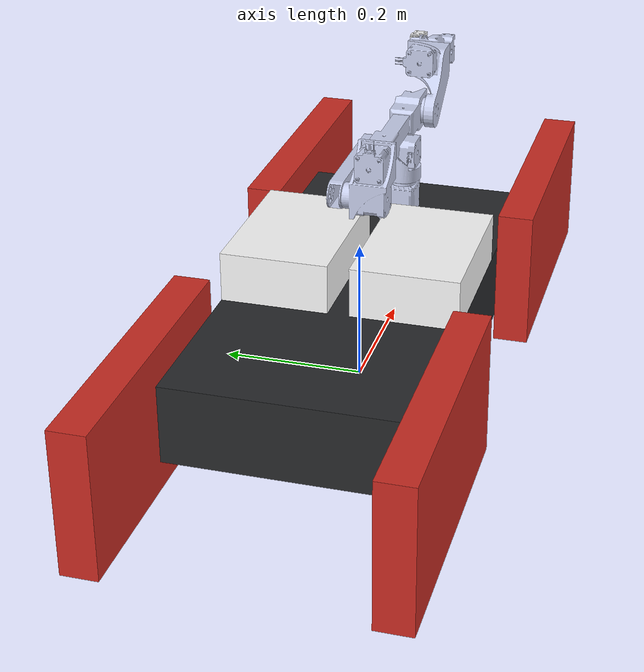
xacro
<?xml version="1.0"?>
<robot xmlns:xacro="http://www.ros.org/wiki/xacro" name="Lotti2">
    <xacro:arg name="initial_positions_file" default="initial_positions.yaml" />

    <!-- Import Lotti2 urdf file -->
    <xacro:include filename="$(find lotti2_control)/description/urdf/Lotti.urdf.xacro" />

    <!-- Import control_xacro -->
    <xacro:include filename="Lotti2.ros2_control.xacro" />

    <xacro:Lotti2_ros2_control name="FakeSystem" initial_positions_file="$(arg initial_positions_file)"/>

</robot>

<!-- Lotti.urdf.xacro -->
<robot xmlns:xacro="http://www.ros.org/wiki/xacro" name="Lotti2">

<!-- included files for properties -->
    <xacro:include filename="urdf_inertial_shapes.xacro" />
    <xacro:include filename="urdf_materials.xacro"/>

<!-- include files for parts -->
    <xacro:include filename="Lotti_arm.xacro"/>
    <xacro:include filename="Lotti_body.xacro"/>

<!-- include controllers -->
    <xacro:include filename="$(find lotti2_control)/ros2_control/Lotti2.ros2_control.xacro"/>
</robot>

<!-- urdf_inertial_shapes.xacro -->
<robot xmlns:xacro="http://www.ros.org/wiki/xacro" >

    <xacro:macro name="inertial_box" params="mass x y z *origin " >
        <inertial>
            <xacro:insert_block name="origin" />
            <mass value="${mass}" />
            <inertia
                ixx="${(1/12) * mass * (y*y+z*z)}" ixy="0.0" ixz="0.0"
                iyy="${(1/12) * mass * (x*x+z*z)}" iyz="0.0"
                izz="${(1/12) * mass * (x*x+z*z)}" />
        </inertial>
    </xacro:macro>

    <xacro:macro name="inertial_cylinder" params="mass length radius *origin " >
        <inertial>
            <xacro:insert_block name="origin" />
            <mass value="${mass}" />
            <inertia
                ixx="${(1/12) * mass * (3*radius*radius + length*length)}" ixy="0.0" ixz="0.0"
                iyy="${(1/12) * mass * (3*radius*radius + length*length)}" iyz="0.0"
                izz="${(1/2) * mass * radius*radius}"/>
        </inertial>
    </xacro:macro>

</robot>

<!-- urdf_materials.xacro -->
<robot xmlns:xacro="http://www.ros.org/wiki/xacro" >

    <material name="red">
        <color rgba="${204/255} ${44/255} ${36/255} 1" />
    </material>

    <material name="black">
        <color rgba ="${39/255} ${41/255} ${43/255} 1" />
    </material>

    <material name="orange">
        <color rgba ="${255/255} ${165/255} ${0/255} 1" />
    </material>

    <material name="white">
        <color rgba ="${255/255} ${255/255} ${255/255} 1" />
    </material>

</robot>

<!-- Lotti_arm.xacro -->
<robot xmlns:xacro="http://www.ros.org/wiki/xacro" >

<!-- Main Body info -->
  <xacro:property name="body_length" value="0.7"/>
  <xacro:property name="body_width" value="0.33"/>
  <xacro:property name="body_height" value="0.15"/>
  <xacro:property name="body_mass" value="25.0"/>

  <joint name="arm_base_joint" type="fixed">
    <origin xyz="${body_length/2 - 0.1} 0 ${body_height}" rpy="0 0 0" />
    <parent link="body_link" />
    <child link="arm_base_link" />
  </joint>

  <link name="arm_base_link">
    <inertial>
      <origin
        xyz="-0.000224896614335376 -1.76636436838296E-07 0.0284165324113623"
        rpy="0 0 0" />
      <mass
        value="0.095546621133873" />
      <inertia
        ixx="2.24695844112508E-05"
        ixy="-3.731322221846E-10"
        ixz="-2.937859610971E-07"
        iyy="2.2990565108001E-05"
        iyz="-1.42938122280671E-10"
        izz="2.49171374121222E-05" />
    </inertial>
    <visual>
      <origin
        xyz="0 0 0"
        rpy="0 0 0" />
      <geometry>
        <mesh filename="package://lotti2_control/description/meshes/base_link.STL" />
      </geometry>
      <material name="">
        <color rgba="0.792156862745098 0.819607843137255 0.933333333333333 1" />
      </material>
    </visual>
    <collision>
      <origin
        xyz="0 0 0"
        rpy="0 0 0" />
      <geometry>
        <mesh filename="package://lotti2_control/description/meshes/base_link.STL" />
      </geometry>
    </collision>
  </link>

  <link name="arm1_link">
    <inertial>
      <origin
        xyz="-0.000148896967024248 0.0077665679059083 0.0349624287308134"
        rpy="0 0 0" />
      <mass
        value="0.144567896175452" />
      <inertia
        ixx="4.73128961005082E-05"
        ixy="-2.93656659450878E-07"
        ixz="3.58678174121677E-10"
        iyy="5.2656542855629E-05"
        iyz="-4.39767746616673E-06"
        izz="4.98076281467198E-05" />
    </inertial>
    <visual>
      <origin
        xyz="0 0 0"
        rpy="0 0 0" />
      <geometry>
        <mesh filename="package://lotti2_control/description/meshes/arm1_link.STL" />
      </geometry>
      <material name="">
        <color rgba="0.792156862745098 0.819607843137255 0.933333333333333 1" />
      </material>
    </visual>
    <collision>
      <origin
        xyz="0 0 0"
        rpy="0 0 0" />
      <geometry>
        <mesh filename="package://lotti2_control/description/meshes/arm1_link.STL" />
      </geometry>
    </collision>
  </link>

  <joint name="arm1_joint" type="revolute">
    <origin
      xyz="0 0 0.051"
      rpy="0 0 0" />
    <parent
      link="arm_base_link" />
    <child
      link="arm1_link" />
    <axis
      xyz="0 0 1" />
    <limit
      lower="-3.2"
      upper="3.2"
      effort="0"
      velocity="8" />
  </joint>

  <link name="arm2_link">
    <inertial>
      <origin
        xyz="-0.0900000000000001 0.00988701341491088 1.11022302462516E-16"
        rpy="0 0 0" />
      <mass
        value="0.0445936683001197" />
      <inertia
        ixx="1.15906322136137E-05"
        ixy="2.14234328856811E-20"
        ixz="-8.43790123801404E-21"
        iyy="0.000160750275623527"
        iyz="5.85999440914565E-20"
        izz="0.000154939805231047" />
    </inertial>
    <visual>
      <origin
        xyz="0 0 0"
        rpy="0 0 0" />
      <geometry>
        <mesh filename="package://lotti2_control/description/meshes/arm2_link.STL" />
      </geometry>
      <material name="">
        <color rgba="0.792156862745098 0.819607843137255 0.933333333333333 1" />
      </material>
    </visual>
    <collision>
      <origin
        xyz="0 0 0"
        rpy="0 0 0" />
      <geometry>
        <mesh filename="package://lotti2_control/description/meshes/arm2_link.STL" />
      </geometry>
    </collision>
  </link>

  <joint name="arm2_joint" type="revolute">
    <origin
      xyz="0 0.04285 0.04255"
      rpy="0 0 0" />
    <parent
      link="arm1_link" />
    <child
      link="arm2_link" />
    <axis
      xyz="0 1 0" />
    <limit
      lower="-0.1"
      upper="3.3"
      effort="0"
      velocity="8" />
  </joint>

  <link name="arm3_link">
    <inertial>
      <origin
        xyz="0.0034648183052334 -0.0383852430442727 0.0255502171970031"
        rpy="0 0 0" />
      <mass
        value="0.245453937373138" />
      <inertia
        ixx="8.97316882684736E-05"
        ixy="1.16398015613713E-06"
        ixz="-6.81869033600654E-06"
        iyy="8.9736154796116E-05"
        iyz="6.8197509364556E-06"
        izz="8.03998131737458E-05" />
    </inertial>
    <visual>
      <origin
        xyz="0 0 0"
        rpy="0 0 0" />
      <geometry>
        <mesh filename="package://lotti2_control/description/meshes/arm3_link.STL" />
      </geometry>
      <material name="">
        <color rgba="0.792156862745098 0.819607843137255 0.933333333333333 1" />
      </material>
    </visual>
    <collision>
      <origin
        xyz="0 0 0"
        rpy="0 0 0" />
      <geometry>
        <mesh filename="package://lotti2_control/description/meshes/arm3_link.STL" />
      </geometry>
    </collision>
  </link>

  <joint name="arm3_joint" type="revolute">
    <origin
      xyz="-0.18 0 0"
      rpy="0 0 0" />
    <parent
      link="arm2_link" />
    <child
      link="arm3_link" />
    <axis
      xyz="0 -1 0" />
    <limit
      lower="-0.1"
      upper="3.3"
      effort="0"
      velocity="8" />
  </joint>

  <link name="arm4_link">
    <inertial>
      <origin
        xyz="0.129288922794988 -0.00357560359269317 0.000163536166512185"
        rpy="0 0 0" />
      <mass
        value="0.172732716660201" />
      <inertia
        ixx="4.39354110528179E-05"
        ixy="3.80962349323384E-06"
        ixz="-4.51308005115847E-10"
        iyy="0.000109924099431947"
        iyz="2.02370281934001E-10"
        izz="0.000100955074081845" />
    </inertial>
    <visual>
      <origin
        xyz="0 0 0"
        rpy="0 0 0" />
      <geometry>
        <mesh filename="package://lotti2_control/description/meshes/arm4_link.STL" />
      </geometry>
      <material name="">
        <color rgba="0.792156862745098 0.819607843137255 0.933333333333333 1" />
      </material>
    </visual>
    <collision>
      <origin
        xyz="0 0 0"
        rpy="0 0 0" />
      <geometry>
        <mesh filename="package://lotti2_control/description/meshes/arm4_link.STL" />
      </geometry>
    </collision>
  </link>

  <joint name="arm4_joint" type="revolute">
    <origin
      xyz="0.04185 -0.04185 0.0511"
      rpy="0 0 0" />
    <parent
      link="arm3_link" />
    <child
      link="arm4_link" />
    <axis
      xyz="-1 0 0" />
    <limit
      lower="-3.3"
      upper="3.3"
      effort="0"
      velocity="8" />
  </joint>

  <link name="arm5_link">
    <inertial>
      <origin
        xyz="0.0572619375972157 0.0117814736268077 0.0431395601131012"
        rpy="0 0 0" />
      <mass
        value="0.128456713327902" />
      <inertia
        ixx="8.06325333482489E-05"
        ixy="-1.34405934586893E-05"
        ixz="-4.06739172941076E-05"
        iyy="0.00012665253676666"
        iyz="-7.27945879035252E-06"
        izz="9.1075218873226E-05" />
    </inertial>
    <visual>
      <origin
        xyz="0 0 0"
        rpy="0 0 0" />
      <geometry>
        <mesh filename="package://lotti2_control/description/meshes/arm5_link.STL" />
      </geometry>
      <material name="">
        <color rgba="0.792156862745098 0.819607843137255 0.933333333333333 1" />
      </material>
    </visual>
    <collision>
      <origin
        xyz="0 0 0"
        rpy="0 0 0" />
      <geometry>
        <mesh filename="package://lotti2_control/description/meshes/arm5_link.STL" />
      </geometry>
    </collision>
  </link>

  <joint name="arm5_joint" type="revolute">
    <origin
      xyz="0.18285 -0.0247 0.0002"
      rpy="0 0 0" />
    <parent
      link="arm4_link" />
    <child
      link="arm5_link" />
    <axis
      xyz="0 -1 0" />
    <limit
      lower="-3.3"
      upper="3.3"
      effort="0"
      velocity="8" />
  </joint>

  <link name="arm6_link">
    <inertial>
      <origin
        xyz="0.0201016161435498 -0.00611223511695827 -0.00143428025220876"
        rpy="0 0 0" />
      <mass
        value="0.0876078923434119" />
      <inertia
        ixx="2.73371985217545E-05"
        ixy="4.47053107392299E-06"
        ixz="1.79990379067894E-07"
        iyy="2.05923742279192E-05"
        iyz="3.38685049490894E-07"
        izz="2.94478003276019E-05" />
    </inertial>
    <visual>
      <origin
        xyz="0 0 0"
        rpy="0 0 0" />
      <geometry>
        <mesh filename="package://lotti2_control/description/meshes/arm6_link.STL" />
      </geometry>
      <material name="">
        <color rgba="0.792156862745098 0.819607843137255 0.933333333333333 1" />
      </material>
    </visual>
    <collision>
      <origin
        xyz="0 0 0"
        rpy="0 0 0" />
      <geometry>
        <mesh filename="package://lotti2_control/description/meshes/arm6_link.STL" />
      </geometry>
    </collision>
  </link>

  <joint name="arm6_joint" type="revolute">
    <origin
      xyz="0.098 0.0245 0.0545"
      rpy="0 0 0" />
    <parent
      link="arm5_link" />
    <child
      link="arm6_link" />
    <axis
      xyz="1 0 0" />
    <limit
      lower="-3.3"
      upper="3.3"
      effort="0"
      velocity="8" />
  </joint>

  <link name="arm7_link">
    <inertial>
      <origin
        xyz="0.0239205093893826 -0.00145000228983914 0.000403955591261024"
        rpy="0 0 0" />
      <mass
        value="0.0194375934693886" />
      <inertia
        ixx="3.84406604985191E-06"
        ixy="1.82179371360061E-07"
        ixz="-7.67943725062146E-08"
        iyy="6.57382955367655E-06"
        iyz="2.7287532191631E-09"
        izz="4.12642773300149E-06" />
    </inertial>
    <visual>
      <origin
        xyz="0 0 0"
        rpy="0 0 0" />
      <geometry>
        <mesh filename="package://lotti2_control/description/meshes/arm7_link.STL" />
      </geometry>
      <material name="">
        <color rgba="0.96078431372549 0.96078431372549 0.964705882352941 1" />
      </material>
    </visual>
    <collision>
      <origin
        xyz="0 0 0"
        rpy="0 0 0" />
      <geometry>
        <mesh filename="package://lotti2_control/description/meshes/arm7_link.STL" />
      </geometry>
    </collision>
  </link>

  <joint name="arm7_joint" type="revolute">
    <origin
      xyz="0.0184 0.02025 -0.0051682"
      rpy="0 0 -0.004276" />
    <parent
      link="arm6_link" />
    <child
      link="arm7_link" />
    <axis
      xyz="0 0 1" />
    <limit
      lower="-0.6"
      upper="1.2"
      effort="0"
      velocity="8" />
  </joint>

</robot>

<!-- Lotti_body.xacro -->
<robot xmlns:xacro="http://www.ros.org/wiki/xacro" >

<!-- Main Body -->
    <xacro:property name="body_length" value="0.7"/>
    <xacro:property name="body_width" value="0.33"/>
    <xacro:property name="body_height" value="0.15"/>
    <xacro:property name="body_mass" value="25.0"/>

    <link name="body_link">
        <visual>
            <origin rpy="0 0 0" xyz="0 0 ${(body_height/2)+0.02}"/>
            <geometry>
            <box size="${body_length} ${body_width} ${body_height-0.04}"/>
            </geometry>
            <material name="black"/>
        </visual>
        <collision>
            <origin rpy="0 0 0" xyz="0 0 ${(body_height/2)}"/>
            <geometry>
            <box size="0.1 0.1 0.1"/>
            </geometry>
        </collision>
        <innertial></innertial>
    </link>

    <!-- Chains (represented by wheels) -->
    <!-- wheel macro-->
    <xacro:property name="wheel_length" value="0.15"/>
    <xacro:property name="wheel_radius" value="${0.22/2}"/>
    <xacro:property name="wheel_mass" value="1"/>
    <xacro:property name="wheel_seperation" value="${body_width - wheel_length}"/>

    <xacro:macro name="chain_link" params="position">
        <link name="${position}_chain_link">
            <visual>
                <origin xyz="0 0 0" rpy="0 0 0"/>
                <geometry>
                    <box size="${wheel_radius*2} ${wheel_length} ${wheel_radius*2}"/>
                </geometry>
                <material name="white"/>
            </visual>
            <collision>
                <origin xyz="0 0 0" rpy="${pi/2} 0 0"/>
                <geometry>
                    <box size="${wheel_radius*2} ${wheel_length} ${wheel_radius*2}"/>
                </geometry>
            </collision>
            <xacro:inertial_box mass="${wheel_mass}" x="${wheel_radius*2}" y="${wheel_length}" z="${wheel_radius*2}">
                <origin xyz="0 0 0" rpy="0 0 0"/>
            </xacro:inertial_box>
        </link>
    </xacro:macro>

    <!-- Left Chain-->
    <joint name="left_chain_joint" type="continuous">
        <origin xyz="0 ${wheel_seperation/2} ${wheel_radius}" rpy="0 0 0"/>
        <parent link="body_link"/>
        <child link="left_chain_link"/>
        <axis xyz="0 -1 0"/>
    </joint>

    <xacro:chain_link position="left"/>

    <!-- Right Chain-->
    <joint name="right_chain_joint" type="continuous">
        <origin xyz="0 ${-wheel_seperation/2} ${wheel_radius}" rpy="0 0 0"/>
        <parent link="body_link"/>
        <child link="right_chain_link"/>
        <axis xyz="0 1 0"/>
    </joint>

    <xacro:chain_link position="right"/>

    <!-- Flippers -->
    <xacro:property name="flipper_length" value="0.4"/>
    <xacro:property name="flipper_width" value="0.05"/>
    <xacro:property name="flipper_height" value="0.2"/>
    <xacro:property name="flipper_mass" value="3.0"/>

    <!-- Flipper link macro -->
    <xacro:macro name="flipper_link" params="position">
        <link name="flipper_${position}_link">
            <visual>
                <origin xyz="${(flipper_height/2) - (flipper_length/2)} 0 0" rpy="0 0 0"/>
                <geometry>
                    <box size="${flipper_length} ${flipper_width} ${flipper_height}"/>
                </geometry>
                <material name="red"/>
            </visual>
            <collision>
                <origin xyz="${(flipper_height/2) - (flipper_length/2)} 0 0" rpy="0 0 0"/>
                <geometry>
                    <box size="${flipper_length} ${flipper_width} ${flipper_height}"/>
                </geometry>
            </collision>
            <xacro:inertial_box mass="${flipper_mass}" x="${flipper_length}" y="${flipper_width}" z="${flipper_height}">
                <origin xyz="${(flipper_height/2) - (flipper_length/2)} 0 0" rpy="0 0 0"/>
            </xacro:inertial_box>
        </link>
    </xacro:macro>

    <!-- Front Left Flipper-->
    <joint name="flipper_fr_joint" type="continuous">
        <origin xyz="${body_length/2 - flipper_height/2} ${-(body_width/2) - (flipper_width/2)} ${flipper_height/2}" rpy="0 ${pi} 0"/>
        <parent link="body_link"/>
        <child link="flipper_fr_link"/>
        <axis xyz="0 1 0"/>
    </joint>

    <xacro:flipper_link position="fr"/>

    <!-- Front Right Flipper-->
    <joint name="flipper_fl_joint" type="continuous">
        <origin xyz="${(body_length/2) - (flipper_height/2)} ${(body_width/2) + (flipper_width/2)} ${flipper_height/2}" rpy="0 ${pi} 0"/>
        <parent link="body_link"/>
        <child link="flipper_fl_link"/>
        <axis xyz="0 1 0"/>
    </joint>

    <xacro:flipper_link position="fl"/>

    <!-- Rear Left Flipper-->
    <joint name="flipper_rr_joint" type="continuous">
        <origin xyz="${-(body_length/2) + (flipper_height/2)} ${-(body_width/2) - (flipper_width/2)} ${flipper_height/2}" rpy="0 0 0"/>
        <parent link="body_link"/>
        <child link="flipper_rr_link"/>
        <axis xyz="0 -1 0"/>
    </joint>

    <xacro:flipper_link position="rr"/>

    <!-- Rear Right Flipper-->
    <joint name="flipper_rl_joint" type="continuous">
        <origin xyz="${-(body_length/2) + (flipper_height/2)} ${(body_width/2) + (flipper_width/2)} ${flipper_height/2}" rpy="0 0 0"/>
        <parent link="body_link"/>
        <child link="flipper_rl_link"/>
        <axis xyz="0 -1 0"/>
    </joint>

    <xacro:flipper_link position="rl"/>

</robot>
